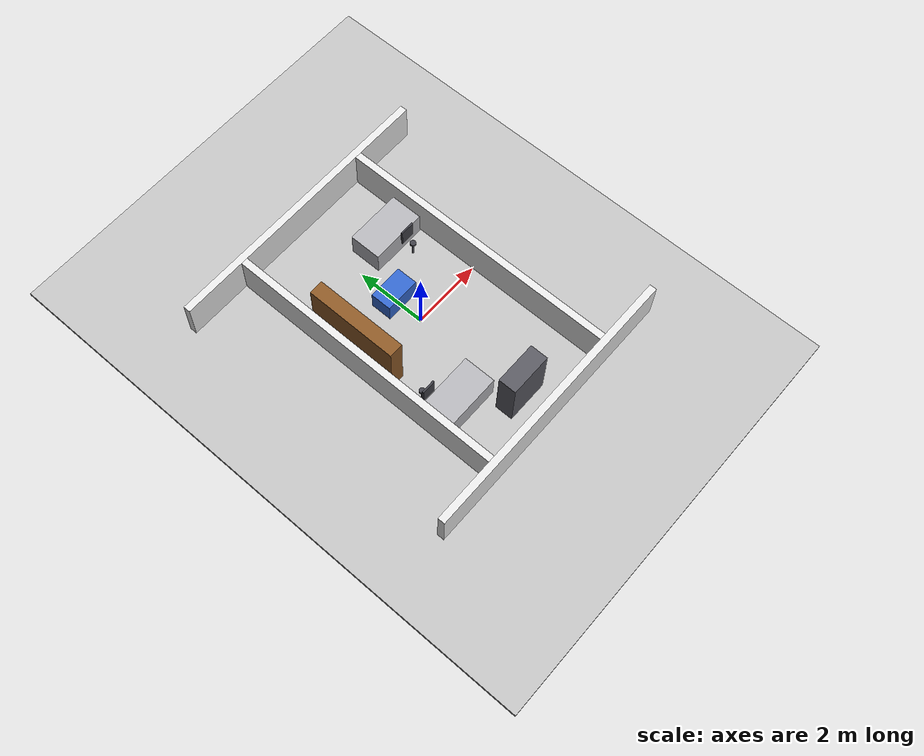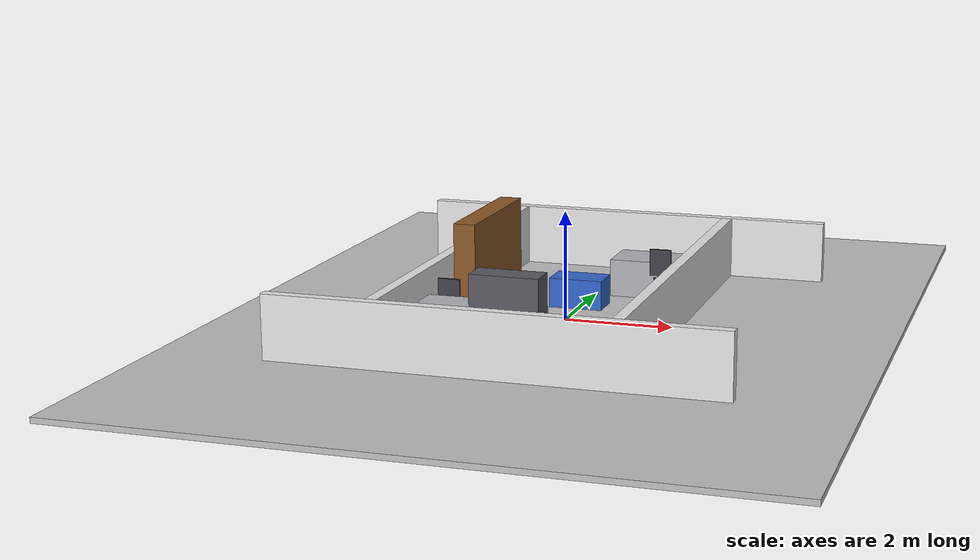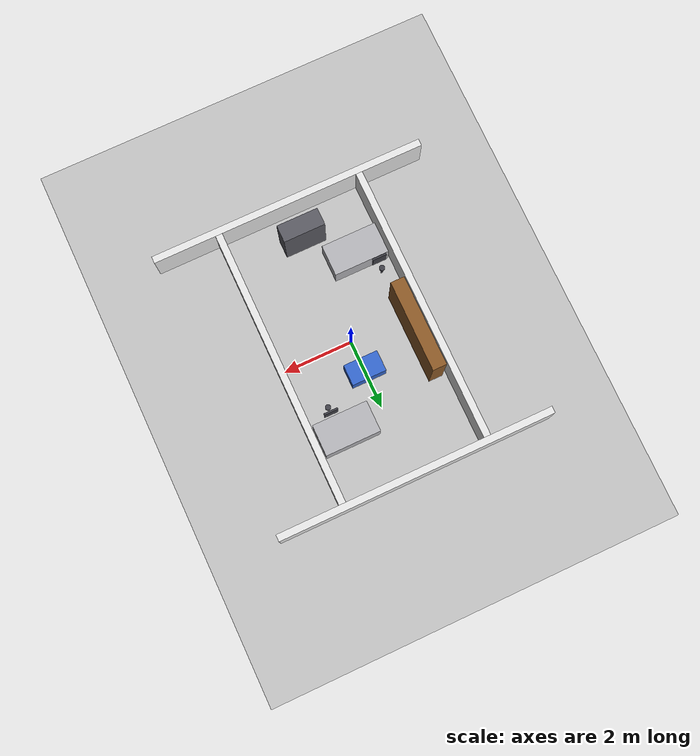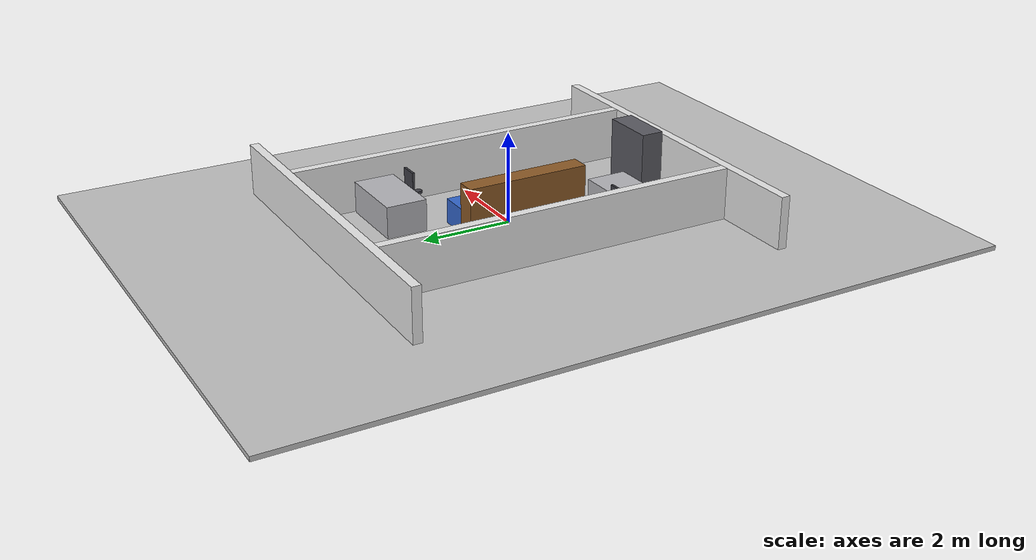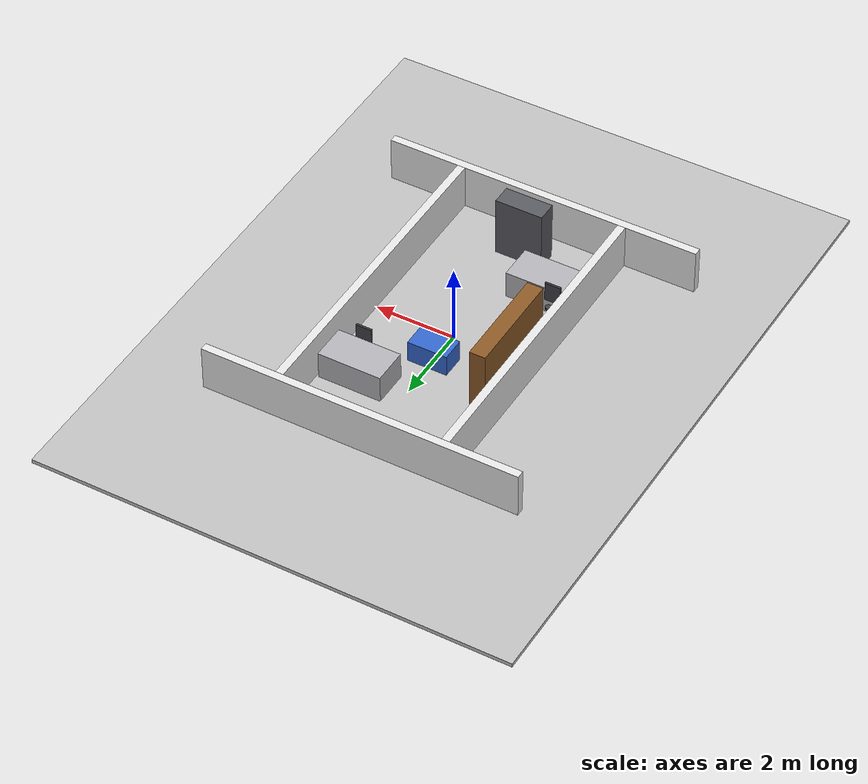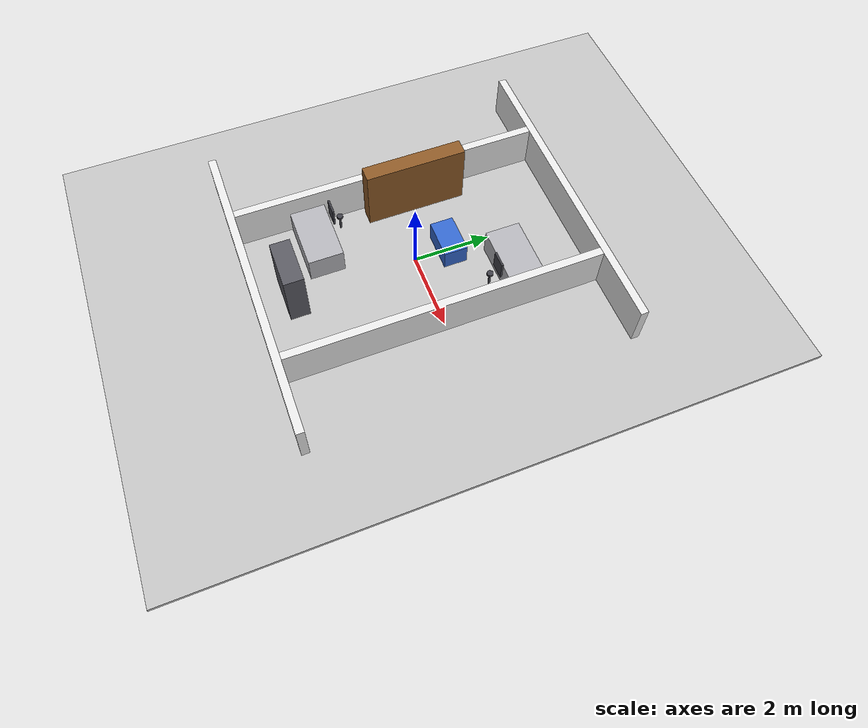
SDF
<?xml version="1.0" ?>
<sdf version="1.9">
  <world name="office_arena">

    <!-- ================= Physics & plugins (Harmonic) ================= -->
    <physics name="1ms" type="ignored">
      <max_step_size>0.001</max_step_size>
      <real_time_factor>1.0</real_time_factor>
    </physics>

    <plugin filename="gz-sim-physics-system"
            name="gz::sim::systems::Physics"/>

    <plugin filename="gz-sim-user-commands-system"
            name="gz::sim::systems::UserCommands"/>

    <plugin filename="gz-sim-scene-broadcaster-system"
            name="gz::sim::systems::SceneBroadcaster"/>

    <!-- Required so the lidar sensor renders on the GPU. -->
    <plugin filename="gz-sim-sensors-system"
            name="gz::sim::systems::Sensors">
      <render_engine>ogre2</render_engine>
    </plugin>

    <!-- ======================== Lighting =============================== -->
    <light type="directional" name="sun">
      <cast_shadows>true</cast_shadows>
      <pose>0 0 10 0 0 0</pose>
      <diffuse>0.8 0.8 0.8 1</diffuse>
      <specular>0.2 0.2 0.2 1</specular>
      <attenuation>
        <range>1000</range>
        <constant>0.9</constant>
        <linear>0.01</linear>
        <quadratic>0.001</quadratic>
      </attenuation>
      <direction>-0.5 0.1 -0.9</direction>
    </light>

    <!-- ====================== Ground plane ============================= -->
    <model name="ground_plane">
      <static>true</static>
      <link name="link">
        <collision name="collision">
          <geometry>
            <box>
              <size>12 16 0.1</size>
            </box>
          </geometry>
          <surface>
            <friction>
              <ode>
                <mu>2.0</mu>
                <mu2>2.0</mu2>
              </ode>
            </friction>
          </surface>
        </collision>
        <visual name="visual">
          <geometry>
            <box>
              <size>12 16 0.1</size>
            </box>
          </geometry>
          <material>
            <ambient>0.75 0.75 0.75 1</ambient>
            <diffuse>0.75 0.75 0.75 1</diffuse>
            <specular>0.1 0.1 0.1 1</specular>
          </material>
        </visual>
      </link>
    </model>

    <!-- =================== Enclosure walls (static) ==================== -->

    <model name="wall_north">
      <static>true</static>
      <pose>0 4.1 0.6 0 0 0</pose>
      <link name="link">
        <collision name="collision">
          <geometry>
            <box>
              <size>8.0 0.2 1.2</size>
            </box>
          </geometry>
        </collision>
        <visual name="visual">
          <geometry>
            <box>
              <size>8.0 0.2 1.2</size>
            </box>
          </geometry>
          <material>
            <ambient>0.9 0.9 0.9 1</ambient>
            <diffuse>0.9 0.9 0.9 1</diffuse>
            <specular>0.3 0.3 0.3 1</specular>
          </material>
        </visual>
      </link>
    </model>

    <model name="wall_south">
      <static>true</static>
      <pose>0 -4.1 0.6 0 0 0</pose>
      <link name="link">
        <collision name="collision">
          <geometry>
            <box>
              <size>8.0 0.2 1.2</size>
            </box>
          </geometry>
        </collision>
        <visual name="visual">
          <geometry>
            <box>
              <size>8.0 0.2 1.2</size>
            </box>
          </geometry>
          <material>
            <ambient>0.9 0.9 0.9 1</ambient>
            <diffuse>0.9 0.9 0.9 1</diffuse>
            <specular>0.3 0.3 0.3 1</specular>
          </material>
        </visual>
      </link>
    </model>

    <model name="wall_east">
      <static>true</static>
      <pose>2.1 0 0.6 0 0 0</pose>
      <link name="link">
        <collision name="collision">
          <geometry>
            <box>
              <size>0.2 8.0 1.2</size>
            </box>
          </geometry>
        </collision>
        <visual name="visual">
          <geometry>
            <box>
              <size>0.2 8.0 1.2</size>
            </box>
          </geometry>
          <material>
            <ambient>0.9 0.9 0.9 1</ambient>
            <diffuse>0.9 0.9 0.9 1</diffuse>
            <specular>0.3 0.3 0.3 1</specular>
          </material>
        </visual>
      </link>
    </model>

    <model name="wall_west">
      <static>true</static>
      <pose>-2.1 0 0.6 0 0 0</pose>
      <link name="link">
        <collision name="collision">
          <geometry>
            <box>
              <size>0.2 8.0 1.2</size>
            </box>
          </geometry>
        </collision>
        <visual name="visual">
          <geometry>
            <box>
              <size>0.2 8.0 1.2</size>
            </box>
          </geometry>
          <material>
            <ambient>0.9 0.9 0.9 1</ambient>
            <diffuse>0.9 0.9 0.9 1</diffuse>
            <specular>0.3 0.3 0.3 1</specular>
          </material>
        </visual>
      </link>
    </model>

    <!-- ===================== Office furniture ========================== -->

    <!-- Center table: gives the robot near-field structure at spawn. -->
    <model name="table_center">
      <static>true</static>
      <pose>0 0.9 0.3 0 0 0</pose>
      <link name="link">
        <collision name="collision">
          <geometry>
            <box>
              <size>1.0 0.6 0.6</size>
            </box>
          </geometry>
        </collision>
        <visual name="visual">
          <geometry>
            <box>
              <size>1.0 0.6 0.6</size>
            </box>
          </geometry>
          <material>
            <ambient>0.2 0.4 0.8 1</ambient>
            <diffuse>0.2 0.4 0.8 1</diffuse>
            <specular>0.4 0.4 0.4 1</specular>
          </material>
        </visual>
      </link>
    </model>

    <!-- West desk (1.6 x 0.9 x 0.75). Kept clear of the wall inner face
         (x = -2.0): spans x in [-1.95, -0.35]. -->
    <model name="desk_west">
      <static>true</static>
      <pose>-1.15 -2.2 0.375 0 0 0</pose>
      <link name="link">
        <collision name="collision">
          <geometry>
            <box>
              <size>1.6 0.9 0.75</size>
            </box>
          </geometry>
        </collision>
        <visual name="visual">
          <geometry>
            <box>
              <size>1.6 0.9 0.75</size>
            </box>
          </geometry>
          <material>
            <ambient>0.7 0.7 0.72 1</ambient>
            <diffuse>0.7 0.7 0.72 1</diffuse>
            <specular>0.2 0.2 0.2 1</specular>
          </material>
        </visual>
      </link>
    </model>

    <!-- East desk (1.6 x 0.9 x 0.75). Kept clear of the wall inner face
         (x = +2.0): spans x in [0.35, 1.95]. -->
    <model name="desk_east">
      <static>true</static>
      <pose>1.15 2.2 0.375 0 0 0</pose>
      <link name="link">
        <collision name="collision">
          <geometry>
            <box>
              <size>1.6 0.9 0.75</size>
            </box>
          </geometry>
        </collision>
        <visual name="visual">
          <geometry>
            <box>
              <size>1.6 0.9 0.75</size>
            </box>
          </geometry>
          <material>
            <ambient>0.7 0.7 0.72 1</ambient>
            <diffuse>0.7 0.7 0.72 1</diffuse>
            <specular>0.2 0.2 0.2 1</specular>
          </material>
        </visual>
      </link>
    </model>

    <!-- Chairs: thin column leg + seat disc + backrest box.
         Seat radius shrunk to 0.08 (from 0.22) and chair_west tucked into
         the shelf so the N-S corridor at x ~ -1.3 stays passable. -->
    <model name="chair_west">
      <static>true</static>
      <pose>-1.62 -1.45 0 0 0 0</pose>
      <link name="link">
        <collision name="leg">
          <pose>0 0 0.235 0 0 0</pose>
          <geometry>
            <cylinder>
              <radius>0.03</radius>
              <length>0.47</length>
            </cylinder>
          </geometry>
        </collision>
        <visual name="leg">
          <pose>0 0 0.235 0 0 0</pose>
          <geometry>
            <cylinder>
              <radius>0.03</radius>
              <length>0.47</length>
            </cylinder>
          </geometry>
          <material>
            <ambient>0.25 0.25 0.28 1</ambient>
            <diffuse>0.25 0.25 0.28 1</diffuse>
          </material>
        </visual>
        <collision name="seat">
          <pose>0 0 0.5 0 0 0</pose>
          <geometry>
            <cylinder>
              <radius>0.08</radius>
              <length>0.06</length>
            </cylinder>
          </geometry>
        </collision>
        <visual name="seat">
          <pose>0 0 0.5 0 0 0</pose>
          <geometry>
            <cylinder>
              <radius>0.08</radius>
              <length>0.06</length>
            </cylinder>
          </geometry>
          <material>
            <ambient>0.25 0.25 0.28 1</ambient>
            <diffuse>0.25 0.25 0.28 1</diffuse>
          </material>
        </visual>
        <collision name="backrest">
          <pose>0 -0.2 0.78 0 0 0</pose>
          <geometry>
            <box>
              <size>0.4 0.05 0.5</size>
            </box>
          </geometry>
        </collision>
        <visual name="backrest">
          <pose>0 -0.2 0.78 0 0 0</pose>
          <geometry>
            <box>
              <size>0.4 0.05 0.5</size>
            </box>
          </geometry>
          <material>
            <ambient>0.25 0.25 0.28 1</ambient>
            <diffuse>0.25 0.25 0.28 1</diffuse>
          </material>
        </visual>
      </link>
    </model>

    <model name="chair_east">
      <static>true</static>
      <pose>1.35 1.45 0 0 0 0</pose>
      <link name="link">
        <collision name="leg">
          <pose>0 0 0.235 0 0 0</pose>
          <geometry>
            <cylinder>
              <radius>0.03</radius>
              <length>0.47</length>
            </cylinder>
          </geometry>
        </collision>
        <visual name="leg">
          <pose>0 0 0.235 0 0 0</pose>
          <geometry>
            <cylinder>
              <radius>0.03</radius>
              <length>0.47</length>
            </cylinder>
          </geometry>
          <material>
            <ambient>0.25 0.25 0.28 1</ambient>
            <diffuse>0.25 0.25 0.28 1</diffuse>
          </material>
        </visual>
        <collision name="seat">
          <pose>0 0 0.5 0 0 0</pose>
          <geometry>
            <cylinder>
              <radius>0.08</radius>
              <length>0.06</length>
            </cylinder>
          </geometry>
        </collision>
        <visual name="seat">
          <pose>0 0 0.5 0 0 0</pose>
          <geometry>
            <cylinder>
              <radius>0.08</radius>
              <length>0.06</length>
            </cylinder>
          </geometry>
          <material>
            <ambient>0.25 0.25 0.28 1</ambient>
            <diffuse>0.25 0.25 0.28 1</diffuse>
          </material>
        </visual>
        <collision name="backrest">
          <pose>0 0.2 0.78 0 0 0</pose>
          <geometry>
            <box>
              <size>0.4 0.05 0.5</size>
            </box>
          </geometry>
        </collision>
        <visual name="backrest">
          <pose>0 0.2 0.78 0 0 0</pose>
          <geometry>
            <box>
              <size>0.4 0.05 0.5</size>
            </box>
          </geometry>
          <material>
            <ambient>0.25 0.25 0.28 1</ambient>
            <diffuse>0.25 0.25 0.28 1</diffuse>
          </material>
        </visual>
      </link>
    </model>

    <!-- Filing cabinet near the south wall (1.2 x 0.5 x 1.6) -->
    <model name="cabinet_south">
      <static>true</static>
      <pose>0.0 -3.2 0.8 0 0 0</pose>
      <link name="link">
        <collision name="collision">
          <geometry>
            <box>
              <size>1.2 0.5 1.6</size>
            </box>
          </geometry>
        </collision>
        <visual name="visual">
          <geometry>
            <box>
              <size>1.2 0.5 1.6</size>
            </box>
          </geometry>
          <material>
            <ambient>0.35 0.35 0.38 1</ambient>
            <diffuse>0.35 0.35 0.38 1</diffuse>
            <specular>0.2 0.2 0.2 1</specular>
          </material>
        </visual>
      </link>
    </model>

    <!-- Tall shelf against the west wall (0.4 x 2.6 x 1.8) -->
    <model name="shelf_west">
      <static>true</static>
      <pose>-1.68 0.6 0.9 0 0 0</pose>
      <link name="link">
        <collision name="collision">
          <geometry>
            <box>
              <size>0.4 2.6 1.8</size>
            </box>
          </geometry>
        </collision>
        <visual name="visual">
          <geometry>
            <box>
              <size>0.4 2.6 1.8</size>
            </box>
          </geometry>
          <material>
            <ambient>0.55 0.35 0.15 1</ambient>
            <diffuse>0.55 0.35 0.15 1</diffuse>
            <specular>0.15 0.15 0.15 1</specular>
          </material>
        </visual>
      </link>
    </model>

  </world>
</sdf>
